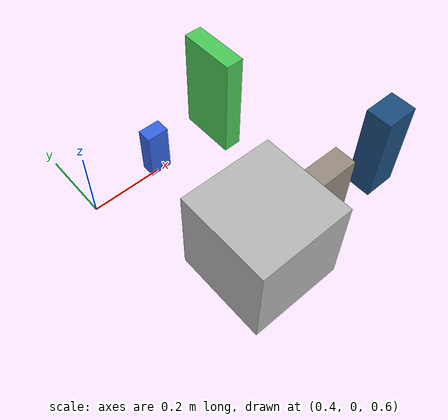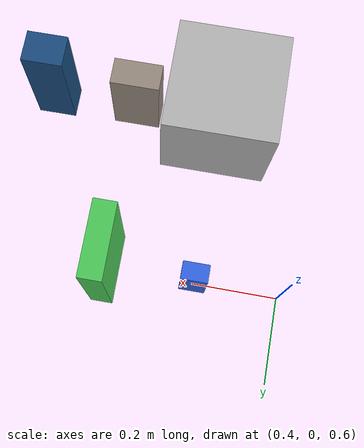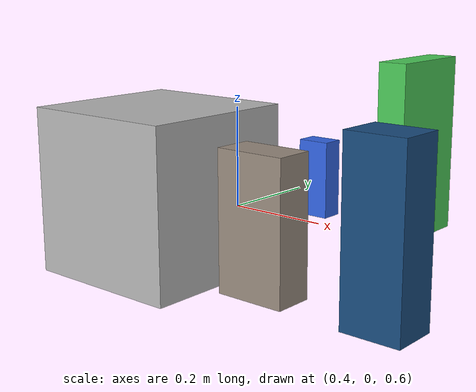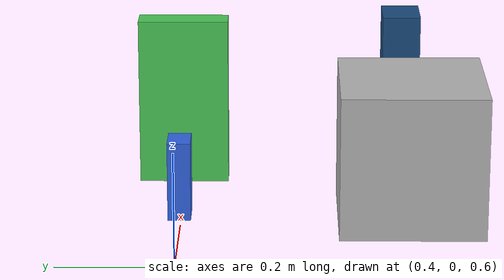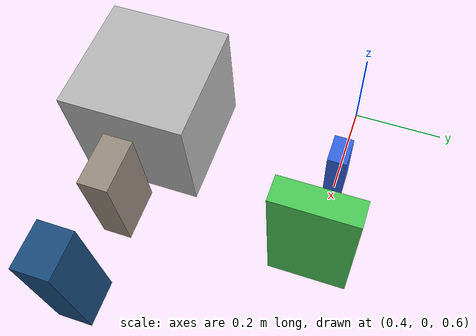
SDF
<sdf version="1.4">
 <world name="default">
  <scene>
   <grid>false</grid>
   <origin_visual>false</origin_visual>
   <sky><clouds><speed>12</speed></clouds></sky>
  </scene>
  <physics name="ode" type="ode">
   <max_step_size>0.01</max_step_size>
   <real_time_factor>1</real_time_factor>
   <real_time_update_rate>100</real_time_update_rate>
   <ode>
    <solver>
     <island_threads>2</island_threads>
     <type>quick</type>
     <iters>100</iters>
     <sor>1.0</sor>
     <use_dynamic_moi_rescaling>false</use_dynamic_moi_rescaling>
    </solver>
   </ode>
  </physics>
  <plugin name="stepping_plugin" filename="libstepping_plugin.so"/>
  <plugin name="gazebo_ros_tf_plugin" filename="libgazebo_ros_tf_plugin.so"/>
  <plugin name="ros_link_attacher_plugin" filename="libgazebo_ros_link_attacher.so"/>
  <plugin name="position_3d_plugin" filename="libposition_3d_plugin.so"/>
  <plugin name="collision_map_plugin" filename="libcollision_map_plugin.so"/>
  <include><uri>model://sun</uri></include>
  <include><pose>0.6 -0.4 0.62 0 0 0</pose><uri>model://box1</uri></include>
  <include><pose>0.8 -0.4 0.62 0 0 0</pose><uri>model://box2_kinematic</uri></include>
  <include><pose>1.0 -0.4 0.62 0 0 0</pose><uri>model://box3</uri></include>
  <include><pose>0.6 0.0 0.62 0 0 0</pose><uri>model://box4</uri></include>
  <include><pose>0.8 0.0 0.62 0 0 0</pose><uri>model://box5</uri></include>
 </world>
</sdf>

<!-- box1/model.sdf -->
<sdf version="1.6">
    <model name="moving_box">
        <link name="link_1">
            <inertial>
                <pose>0 0 0.125 0 0 0</pose>
                <inertia>
                    <ixx>0.0208333</ixx>
                    <ixy>0</ixy>
                    <ixz>0</ixz>
                    <iyy>0.0208333</iyy>
                    <iyz>0</iyz>
                    <izz>0.0208333</izz>
                </inertia>
                <mass>2</mass>
            </inertial>
            <visual name="visual">
                <pose>0 0 0.125 0 0 0</pose>
                <geometry>
                    <box>
                        <size>0.25 0.25 0.25</size>
                    </box>
                </geometry>
            </visual>
            <collision name="box_collision">
                <pose>0 0 0.125 0 0 0</pose>
                <geometry>
                    <box>
                        <size>0.25 0.25 0.25</size>
                    </box>
                </geometry>
                <surface>
                    <friction>
                        <ode>
                            <mu>5.0</mu>
                            <mu2>5.0</mu2>
                        </ode>
                    </friction>
                </surface>
            </collision>
        </link>
        <plugin name='position_3d_plugin' filename='libposition_3d_plugin.so'>
            <kP_pos>5</kP_pos>
            <kI_pos>0.0</kI_pos>
            <kD_pos>0.0</kD_pos>
            <kP_vel>100.0</kP_vel>
            <kI_vel>0.0</kI_vel>
            <kD_vel>0.0</kD_vel>
            <max_force>15.0</max_force>
            <max_vel>0.5</max_vel>
            <kP_rot>0.1</kP_rot>
            <kI_rot>0.0</kI_rot>
            <kD_rot>0.0</kD_rot>
            <kP_rot_vel>0.0</kP_rot_vel>
            <kI_rot_vel>0.0</kI_rot_vel>
            <kD_rot_vel>0.0</kD_rot_vel>
            <max_torque>0.0</max_torque>
            <max_rot_vel>0.0</max_rot_vel>
            <link>link_1</link>
        </plugin>
    </model>
</sdf>

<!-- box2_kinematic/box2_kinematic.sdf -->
<sdf version="1.6">
    <model name="box2_kinematic">
        <allow_auto_disable>true</allow_auto_disable>
        <link name="link_1">
            <kinematic>true</kinematic>
            <pose>0 0 0.105 0 0 0 0</pose>
            <inertial>
                <pose>0 0 -0.08 0 0 0 0</pose>
                <inertia>
                    <ixx>0.03974999999999999</ixx>
                    <ixy>0</ixy>
                    <ixz>0</ixz>
                    <iyy>0.046833333333333324</iyy>
                    <iyz>0</iyz>
                    <izz>0.01308333333333333</izz>
                </inertia>
                <mass>10.0</mass>
            </inertial>
            <visual name="visual">
                <geometry>
                    <box>
                        <size>0.11 0.06 0.21</size>
                    </box>
                </geometry>
                <material>
                    <ambient>0.6 0.55 0.5 1.0</ambient>
                    <diffuse>0.6 0.55 0.5 1.0</diffuse>
                </material>
            </visual>
            <collision name="box_collision">
                <geometry>
                    <box>
                        <size>0.11 0.06 0.21</size>
                    </box>
                </geometry>
                <surface>
                    <friction>
                        <ode>
                            <mu>1.0</mu>
                            <mu2>1.0</mu2>
                        </ode>
                    </friction>
                    <contact>
                        <ode>
                            <kp>1e15</kp>
                            <kd>1e12</kd>
                        </ode>
                    </contact>
                </surface>
            </collision>
        </link>
    </model>
</sdf>

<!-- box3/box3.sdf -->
<sdf version="1.6">
    <model name="box3">
        <allow_auto_disable>true</allow_auto_disable>
        <link name="link_1">
            <kinematic>true</kinematic>
            <pose>0 0 0.13 0 0 0 0</pose>
            <inertial>
                <pose>0 0 -0.08 0 0 0 0</pose>
                <inertia>
                    <ixx>0.04441666666666666</ixx>
                    <ixy>0</ixy>
                    <ixz>0</ixz>
                    <iyy>0.047083333333333324</iyy>
                    <iyz>0</iyz>
                    <izz>0.010833333333333334</izz>
                </inertia>
                <mass>10.0</mass>
            </inertial>
            <visual name="visual">
                <geometry>
                    <box>
                        <size>0.09 0.07 0.26</size>
                    </box>
                </geometry>
                <material>
                    <ambient>0.1 0.3 0.5 1.0</ambient>
                    <diffuse>0.1 0.3 0.5 1.0</diffuse>
                </material>
            </visual>
            <collision name="box_collision">
                <geometry>
                    <box>
                        <size>0.09 0.07 0.26</size>
                    </box>
                </geometry>
                <surface>
                    <friction>
                        <ode>
                            <mu>1.0</mu>
                            <mu2>1.0</mu2>
                        </ode>
                    </friction>
                    <contact>
                        <ode>
                            <kp>1e15</kp>
                            <kd>1e12</kd>
                        </ode>
                    </contact>
                </surface>
            </collision>
        </link>
    </model>
</sdf>

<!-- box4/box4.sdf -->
<sdf version="1.6">
    <model name="box4">
        <allow_auto_disable>true</allow_auto_disable>
        <link name="link_1">
            <kinematic>true</kinematic>
            <pose>0 0 0.07 0 0 0 0</pose>
            <inertial>
                <pose>0 0 -0.08 0 0 0 0</pose>
                <inertia>
                    <ixx>0.017666666666666667</ixx>
                    <ixy>0</ixy>
                    <ixz>0</ixz>
                    <iyy>0.019333333333333334</iyy>
                    <iyz>0</iyz>
                    <izz>0.004333333333333333</izz>
                </inertia>
                <mass>10.0</mass>
            </inertial>
            <visual name="visual">
                <geometry>
                    <box>
                        <size>0.06 0.04 0.14</size>
                    </box>
                </geometry>
                    <material>
                    <ambient>0.2 0.4 0.9 1.0</ambient>
                    <diffuse>0.2 0.4 0.9 1.0</diffuse>
                    </material>
            </visual>
            <collision name="box_collision">
                <geometry>
                    <box>
                        <size>0.06 0.04 0.14</size>
                    </box>
                </geometry>
                <surface>
                    <friction>
                        <ode>
                            <mu>1.0</mu>
                            <mu2>1.0</mu2>
                        </ode>
                    </friction>
                    <contact>
                        <ode>
                            <kp>1e15</kp>
                            <kd>1e12</kd>
                        </ode>
                    </contact>
                </surface>
            </collision>
        </link>
    </model>
</sdf>

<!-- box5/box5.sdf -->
<sdf version="1.6">
    <model name="box5">
        <allow_auto_disable>true</allow_auto_disable>
        <link name="link_1">
            <kinematic>true</kinematic>
            <pose>0 0 0.15 0 0 0 0</pose>
            <inertial>
                <pose>0 0 -0.08 0 0 0 0</pose>
                <inertia>
                    <ixx>0.017666666666666667</ixx>
                    <ixy>0</ixy>
                    <ixz>0</ixz>
                    <iyy>0.019333333333333334</iyy>
                    <iyz>0</iyz>
                    <izz>0.004333333333333333</izz>
                </inertia>
                <mass>10.0</mass>
            </inertial>
            <visual name="visual">
                <geometry>
                    <box>
                        <size>0.05 0.16 0.3</size>
                    </box>
                </geometry>
                    <material>
                    <ambient>0.4 0.95 0.35 1.0</ambient>
                    <diffuse>0.3 0.8 0.35 1.0</diffuse>
                    </material>
            </visual>
            <collision name="box_collision">
                <geometry>
                    <box>
                        <size>0.05 0.16 0.3</size>
                    </box>
                </geometry>
                <surface>
                    <friction>
                        <ode>
                            <mu>1.0</mu>
                            <mu2>1.0</mu2>
                        </ode>
                    </friction>
                    <contact>
                        <ode>
                            <kp>1e15</kp>
                            <kd>1e12</kd>
                        </ode>
                    </contact>
                </surface>
            </collision>
        </link>
    </model>
</sdf>
